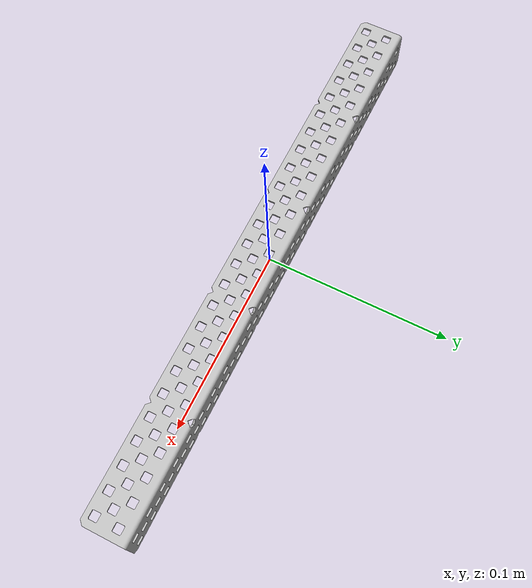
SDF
<?xml version='1.0'?>
<sdf version="1.4">
	<model name="Angle_2x2x25">
		<pose>0 0 0 0 0 0</pose>
		<static>true</static>
		<link name="body">
			<inertial>
				<pose>0.000000 0.000380 0.000380 0 0 0</pose>
				<mass>0.114</mass>
				<inertia>
					<ixx>0.00000000189</ixx>
					<ixy>0</ixy>
					<ixz>0</ixz>
					<iyy>0.00000012302</iyy>
					<iyz>0.00000000055</iyz>
					<izz>0.00000012302</izz>
				</inertia>
			</inertial>
			<collision name="collision">
				<geometry>
					<box>
						<size>0.317496 0.025400 0.025400</size>
					</box>
				</geometry>
			</collision>
			<visual name="visual">
				<geometry>
					<mesh><uri>model://Angle_2x2x25/Angle_2x2x25.dae</uri></mesh>
				</geometry>
			</visual>
		</link>
	</model>
</sdf>
